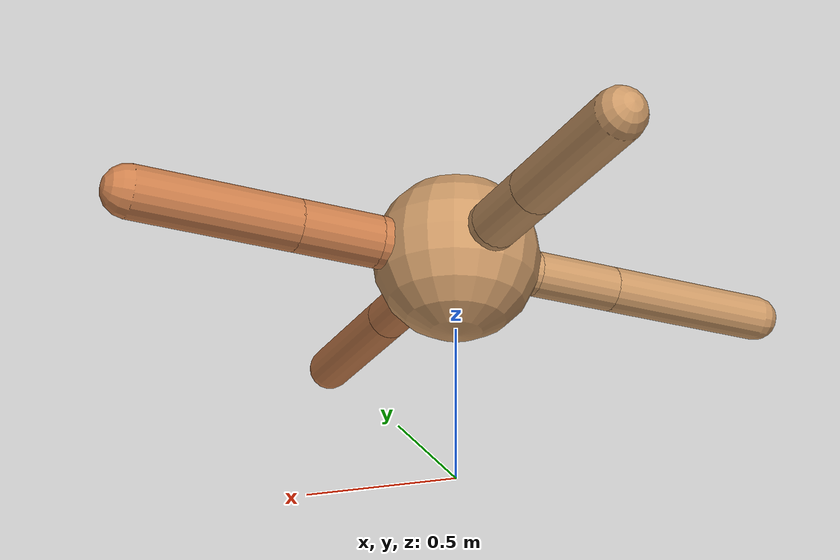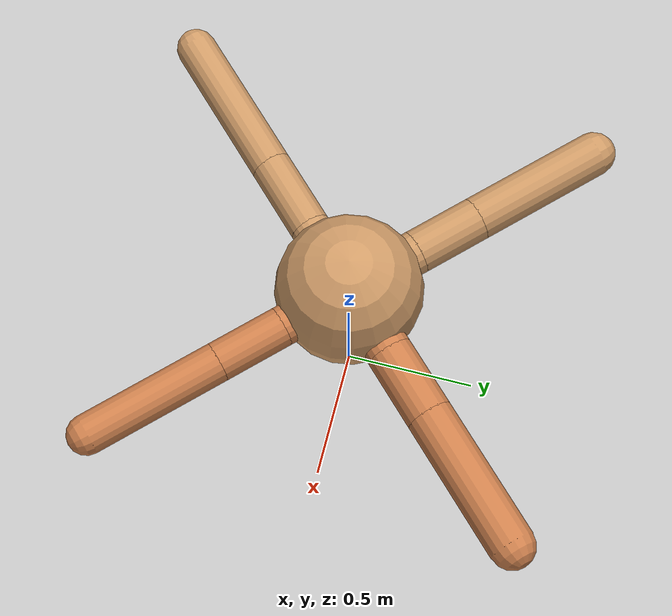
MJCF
<?xml version="1.0" ?>
<mujoco model="ant">

	<compiler angle="degree" coordinate="local" inertiafromgeom="true"/>

	<option integrator="RK4" timestep="0.01"/>

	<custom>

		<numeric data="0.0 0.0 0.55 1.0 0.0 0.0 0.0 0.0 1.0 0.0 -1.0 0.0 -1.0 0.0 1.0" name="init_qpos"/>

	</custom>

	<default>

		<joint armature="1" damping="1" limited="true"/>

		<geom conaffinity="0" condim="3" density="5.0" friction="1.5 0.1 0.1" margin="0.01" rgba="0.8 0.6 0.4 1"/>

	</default>

	<worldbody>

		<body name="torso" pos="0 0 0.75">

			<geom name="torso_geom" pos="0 0 0" size="0.27330586584459965" type="sphere"/>

			<!--joint armature="0" damping="0" limited="false" margin="0.01" name="root" pos="0 0 0" type="free"/-->

			<body name="front_left_leg" pos="0 0 0">

				<geom fromto="0 0 0 0.2 0.2 0" name="aux_1_geom" size="0.08550994275913962" type="capsule" rgba=".8 .5 .3 1"/>

				<body name="aux_1" pos="0.2 0.2 0">

					<joint axis="0 0 1" name="hip_1" pos="0.0 0.0 0.0" range="-40 40" type="hinge"/>

					<geom fromto="0 0 0 0.1923407029092039 0.1923407029092039 0" name="left_leg_geom" size="0.08550994275913962" type="capsule" rgba=".8 .5 .3 1"/>

					<body pos="0.1923407029092039 0.1923407029092039 0" name="front_left_foot">

						<joint axis="-1 1 0" name="ankle_1" pos="0.0 0.0 0.0" range="30 100" type="hinge"/>

						<geom fromto="0 0 0 0.3846814058184078 0.3846814058184078 0" name="left_ankle_geom" size="0.08550994275913962" type="capsule" rgba=".8 .5 .3 1"/>

					</body>

				</body>

			</body>

			<body name="front_right_leg" pos="0 0 0">

				<geom fromto="0 0 0 -0.2 0.2 0" name="aux_2_geom" size="0.08286657563690723" type="capsule"/>

				<body name="aux_2" pos="-0.2 0.2 0">

					<joint axis="0 0 1" name="hip_2" pos="0.0 0.0 0.0" range="-40 40" type="hinge"/>

					<geom fromto="0 0 0 -0.18274931524050447 0.18274931524050447 0" name="right_leg_geom" size="0.08286657563690723" type="capsule"/>

					<body pos="-0.18274931524050447 0.18274931524050447 0" name="front_right_foot">

						<joint axis="1 1 0" name="ankle_2" pos="0.0 0.0 0.0" range="-100 -30" type="hinge"/>

						<geom fromto="0 0 0 -0.36549863048100895 0.36549863048100895 0" name="right_ankle_geom" size="0.08286657563690723" type="capsule"/>

					</body>

				</body>

			</body>

			<body name="left_back_leg" pos="0 0 0">

				<geom fromto="0 0 0 -0.2 -0.2 0" name="aux_3_geom" size="0.07504668092829041" type="capsule"/>

				<body name="aux_3" pos="-0.2 -0.2 0">

					<joint axis="0 0 1" name="hip_3" pos="0.0 0.0 0.0" range="-40 40" type="hinge"/>

					<geom fromto="0 0 0 -0.2028502610624864 -0.2028502610624864 0" name="back_leg_geom" size="0.07504668092829041" type="capsule"/>

					<body pos="-0.2028502610624864 -0.2028502610624864 0" name="left_back_foot">

						<joint axis="-1 1 0" name="ankle_3" pos="0.0 0.0 0.0" range="-100 -30" type="hinge"/>

						<geom fromto="0 0 0 -0.4057005221249728 -0.4057005221249728 0" name="third_ankle_geom" size="0.07504668092829041" type="capsule"/>

					</body>

				</body>

			</body>

			<body name="right_back_leg" pos="0 0 0">

				<geom fromto="0 0 0 0.2 -0.2 0" name="aux_4_geom" size="0.0747424427193155" type="capsule" rgba=".8 .5 .3 1"/>

				<body name="aux_4" pos="0.2 -0.2 0">

					<joint axis="0 0 1" name="hip_4" pos="0.0 0.0 0.0" range="-40 40" type="hinge"/>

					<geom fromto="0 0 0 0.18630275280838923 -0.18630275280838923 0" name="rightback_leg_geom" size="0.0747424427193155" type="capsule" rgba=".8 .5 .3 1"/>

					<body pos="0.18630275280838923 -0.18630275280838923 0" name="right_back_foot">

						<joint axis="1 1 0" name="ankle_4" pos="0.0 0.0 0.0" range="30 100" type="hinge"/>

						<geom fromto="0 0 0 0.37260550561677847 -0.37260550561677847 0" name="fourth_ankle_geom" size="0.0747424427193155" type="capsule" rgba=".8 .5 .3 1"/>

					</body>

				</body>

			</body>

		</body>

	</worldbody>

	<actuator>

		<motor ctrllimited="true" ctrlrange="-1.0 1.0" joint="hip_4" gear="150"/>

		<motor ctrllimited="true" ctrlrange="-1.0 1.0" joint="ankle_4" gear="150"/>

		<motor ctrllimited="true" ctrlrange="-1.0 1.0" joint="hip_1" gear="150"/>

		<motor ctrllimited="true" ctrlrange="-1.0 1.0" joint="ankle_1" gear="150"/>

		<motor ctrllimited="true" ctrlrange="-1.0 1.0" joint="hip_2" gear="150"/>

		<motor ctrllimited="true" ctrlrange="-1.0 1.0" joint="ankle_2" gear="150"/>

		<motor ctrllimited="true" ctrlrange="-1.0 1.0" joint="hip_3" gear="150"/>

		<motor ctrllimited="true" ctrlrange="-1.0 1.0" joint="ankle_3" gear="150"/>

	</actuator>

</mujoco>
